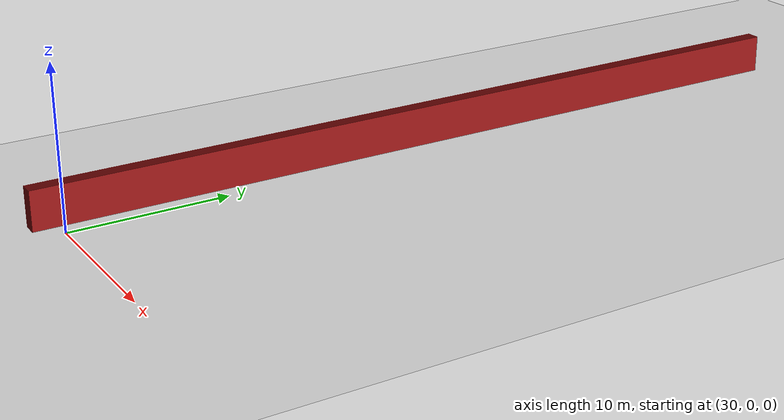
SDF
<sdf version="1.4">
 <world name="1_wall">
  <model name="ground_plane">
   <static>1</static>
   <link name="link">
    <collision name="collision">
     <geometry><plane><normal>0 0 1</normal><size>1000 1000</size></plane></geometry>
     <surface><friction><ode><mu>100</mu><mu2>50</mu2></ode></friction></surface>
    </collision>
    <visual name="visual">
     <cast_shadows>0</cast_shadows>
     <geometry><plane><normal>0 0 1</normal><size>10000 10000</size></plane></geometry>
     <material>
      <script><uri>file://media/materials/scripts/gazebo.material</uri><name>Gazebo/Grey</name></script>
     </material>
    </visual>
    <velocity_decay><linear>0</linear><angular>0</angular></velocity_decay>
   </link>
  </model>
  <model name="Wall_591">
   <static>1</static>
   <link name="Wall_591">
    <collision name="Wall_Collision_591">
     <geometry><box><size>53.65 0.05 2.5</size></box></geometry>
     <pose>0 0 1.25 0 -0 0</pose>
    </collision>
    <visual name="Wall_Visual_591">
     <pose>0 0 1.25 0 -0 0</pose>
     <geometry><box><size>53.65 0.05 2.5</size></box></geometry>
     <material>
      <script><uri>file://media/materials/scripts/gazebo.material</uri><name>Gazebo/Red</name></script>
     </material>
    </visual>
    <velocity_decay><linear>0</linear><angular>0</angular></velocity_decay>
    <pose>28.05 25.3 0 0 0 1.5707963267948966</pose>
   </link>
  </model>
  <model name="Wall_592">
   <static>1</static>
   <link name="Wall_592">
    <collision name="Wall_Collision_592">
     <geometry><box><size>53.65 0.05 2.5</size></box></geometry>
     <pose>0 0 1.25 0 -0 0</pose>
    </collision>
    <visual name="Wall_Visual_592">
     <pose>0 0 1.25 0 -0 0</pose>
     <geometry><box><size>53.65 0.05 2.5</size></box></geometry>
     <material>
      <script><uri>file://media/materials/scripts/gazebo.material</uri><name>Gazebo/Red</name></script>
     </material>
    </visual>
    <velocity_decay><linear>0</linear><angular>0</angular></velocity_decay>
    <pose>28.1 25.3 0 0 0 1.5707963267948966</pose>
   </link>
  </model>
  <model name="Wall_593">
   <static>1</static>
   <link name="Wall_593">
    <collision name="Wall_Collision_593">
     <geometry><box><size>53.65 0.05 2.5</size></box></geometry>
     <pose>0 0 1.25 0 -0 0</pose>
    </collision>
    <visual name="Wall_Visual_593">
     <pose>0 0 1.25 0 -0 0</pose>
     <geometry><box><size>53.65 0.05 2.5</size></box></geometry>
     <material>
      <script><uri>file://media/materials/scripts/gazebo.material</uri><name>Gazebo/Red</name></script>
     </material>
    </visual>
    <velocity_decay><linear>0</linear><angular>0</angular></velocity_decay>
    <pose>28.15 25.3 0 0 0 1.5707963267948966</pose>
   </link>
  </model>
  <model name="Wall_594">
   <static>1</static>
   <link name="Wall_594">
    <collision name="Wall_Collision_594">
     <geometry><box><size>53.65 0.05 2.5</size></box></geometry>
     <pose>0 0 1.25 0 -0 0</pose>
    </collision>
    <visual name="Wall_Visual_594">
     <pose>0 0 1.25 0 -0 0</pose>
     <geometry><box><size>53.65 0.05 2.5</size></box></geometry>
     <material>
      <script><uri>file://media/materials/scripts/gazebo.material</uri><name>Gazebo/Red</name></script>
     </material>
    </visual>
    <velocity_decay><linear>0</linear><angular>0</angular></velocity_decay>
    <pose>28.2 25.3 0 0 0 1.5707963267948966</pose>
   </link>
  </model>
  <model name="Wall_595">
   <static>1</static>
   <link name="Wall_595">
    <collision name="Wall_Collision_595">
     <geometry><box><size>53.65 0.05 2.5</size></box></geometry>
     <pose>0 0 1.25 0 -0 0</pose>
    </collision>
    <visual name="Wall_Visual_595">
     <pose>0 0 1.25 0 -0 0</pose>
     <geometry><box><size>53.65 0.05 2.5</size></box></geometry>
     <material>
      <script><uri>file://media/materials/scripts/gazebo.material</uri><name>Gazebo/Red</name></script>
     </material>
    </visual>
    <velocity_decay><linear>0</linear><angular>0</angular></velocity_decay>
    <pose>28.25 25.3 0 0 0 1.5707963267948966</pose>
   </link>
  </model>
  <model name="Wall_596">
   <static>1</static>
   <link name="Wall_596">
    <collision name="Wall_Collision_596">
     <geometry><box><size>53.65 0.05 2.5</size></box></geometry>
     <pose>0 0 1.25 0 -0 0</pose>
    </collision>
    <visual name="Wall_Visual_596">
     <pose>0 0 1.25 0 -0 0</pose>
     <geometry><box><size>53.65 0.05 2.5</size></box></geometry>
     <material>
      <script><uri>file://media/materials/scripts/gazebo.material</uri><name>Gazebo/Red</name></script>
     </material>
    </visual>
    <velocity_decay><linear>0</linear><angular>0</angular></velocity_decay>
    <pose>28.3 25.3 0 0 0 1.5707963267948966</pose>
   </link>
  </model>
  <model name="Wall_597">
   <static>1</static>
   <link name="Wall_597">
    <collision name="Wall_Collision_597">
     <geometry><box><size>53.65 0.05 2.5</size></box></geometry>
     <pose>0 0 1.25 0 -0 0</pose>
    </collision>
    <visual name="Wall_Visual_597">
     <pose>0 0 1.25 0 -0 0</pose>
     <geometry><box><size>53.65 0.05 2.5</size></box></geometry>
     <material>
      <script><uri>file://media/materials/scripts/gazebo.material</uri><name>Gazebo/Red</name></script>
     </material>
    </visual>
    <velocity_decay><linear>0</linear><angular>0</angular></velocity_decay>
    <pose>28.35 25.3 0 0 0 1.5707963267948966</pose>
   </link>
  </model>
  <model name="Wall_598">
   <static>1</static>
   <link name="Wall_598">
    <collision name="Wall_Collision_598">
     <geometry><box><size>53.65 0.05 2.5</size></box></geometry>
     <pose>0 0 1.25 0 -0 0</pose>
    </collision>
    <visual name="Wall_Visual_598">
     <pose>0 0 1.25 0 -0 0</pose>
     <geometry><box><size>53.65 0.05 2.5</size></box></geometry>
     <material>
      <script><uri>file://media/materials/scripts/gazebo.material</uri><name>Gazebo/Red</name></script>
     </material>
    </visual>
    <velocity_decay><linear>0</linear><angular>0</angular></velocity_decay>
    <pose>28.4 25.3 0 0 0 1.5707963267948966</pose>
   </link>
  </model>
  <model name="Wall_599">
   <static>1</static>
   <link name="Wall_599">
    <collision name="Wall_Collision_599">
     <geometry><box><size>53.65 0.05 2.5</size></box></geometry>
     <pose>0 0 1.25 0 -0 0</pose>
    </collision>
    <visual name="Wall_Visual_599">
     <pose>0 0 1.25 0 -0 0</pose>
     <geometry><box><size>53.65 0.05 2.5</size></box></geometry>
     <material>
      <script><uri>file://media/materials/scripts/gazebo.material</uri><name>Gazebo/Red</name></script>
     </material>
    </visual>
    <velocity_decay><linear>0</linear><angular>0</angular></velocity_decay>
    <pose>28.45 25.3 0 0 0 1.5707963267948966</pose>
   </link>
  </model>
  <model name="Wall_600">
   <static>1</static>
   <link name="Wall_600">
    <collision name="Wall_Collision_600">
     <geometry><box><size>53.65 0.05 2.5</size></box></geometry>
     <pose>0 0 1.25 0 -0 0</pose>
    </collision>
    <visual name="Wall_Visual_600">
     <pose>0 0 1.25 0 -0 0</pose>
     <geometry><box><size>53.65 0.05 2.5</size></box></geometry>
     <material>
      <script><uri>file://media/materials/scripts/gazebo.material</uri><name>Gazebo/Red</name></script>
     </material>
    </visual>
    <velocity_decay><linear>0</linear><angular>0</angular></velocity_decay>
    <pose>28.5 25.3 0 0 0 1.5707963267948966</pose>
   </link>
  </model>
  <model name="Wall_601">
   <static>1</static>
   <link name="Wall_601">
    <collision name="Wall_Collision_601">
     <geometry><box><size>53.65 0.05 2.5</size></box></geometry>
     <pose>0 0 1.25 0 -0 0</pose>
    </collision>
    <visual name="Wall_Visual_601">
     <pose>0 0 1.25 0 -0 0</pose>
     <geometry><box><size>53.65 0.05 2.5</size></box></geometry>
     <material>
      <script><uri>file://media/materials/scripts/gazebo.material</uri><name>Gazebo/Red</name></script>
     </material>
    </visual>
    <velocity_decay><linear>0</linear><angular>0</angular></velocity_decay>
    <pose>28.55 25.3 0 0 0 1.5707963267948966</pose>
   </link>
  </model>
  <model name="Wall_602">
   <static>1</static>
   <link name="Wall_602">
    <collision name="Wall_Collision_602">
     <geometry><box><size>53.65 0.05 2.5</size></box></geometry>
     <pose>0 0 1.25 0 -0 0</pose>
    </collision>
    <visual name="Wall_Visual_602">
     <pose>0 0 1.25 0 -0 0</pose>
     <geometry><box><size>53.65 0.05 2.5</size></box></geometry>
     <material>
      <script><uri>file://media/materials/scripts/gazebo.material</uri><name>Gazebo/Red</name></script>
     </material>
    </visual>
    <velocity_decay><linear>0</linear><angular>0</angular></velocity_decay>
    <pose>28.6 25.3 0 0 0 1.5707963267948966</pose>
   </link>
  </model>
  <model name="Wall_603">
   <static>1</static>
   <link name="Wall_603">
    <collision name="Wall_Collision_603">
     <geometry><box><size>53.65 0.05 2.5</size></box></geometry>
     <pose>0 0 1.25 0 -0 0</pose>
    </collision>
    <visual name="Wall_Visual_603">
     <pose>0 0 1.25 0 -0 0</pose>
     <geometry><box><size>53.65 0.05 2.5</size></box></geometry>
     <material>
      <script><uri>file://media/materials/scripts/gazebo.material</uri><name>Gazebo/Red</name></script>
     </material>
    </visual>
    <velocity_decay><linear>0</linear><angular>0</angular></velocity_decay>
    <pose>28.65 25.3 0 0 0 1.5707963267948966</pose>
   </link>
  </model>
  <model name="Wall_604">
   <static>1</static>
   <link name="Wall_604">
    <collision name="Wall_Collision_604">
     <geometry><box><size>53.65 0.05 2.5</size></box></geometry>
     <pose>0 0 1.25 0 -0 0</pose>
    </collision>
    <visual name="Wall_Visual_604">
     <pose>0 0 1.25 0 -0 0</pose>
     <geometry><box><size>53.65 0.05 2.5</size></box></geometry>
     <material>
      <script><uri>file://media/materials/scripts/gazebo.material</uri><name>Gazebo/Red</name></script>
     </material>
    </visual>
    <velocity_decay><linear>0</linear><angular>0</angular></velocity_decay>
    <pose>28.7 25.3 0 0 0 1.5707963267948966</pose>
   </link>
  </model>
  <model name="Wall_605">
   <static>1</static>
   <link name="Wall_605">
    <collision name="Wall_Collision_605">
     <geometry><box><size>53.65 0.05 2.5</size></box></geometry>
     <pose>0 0 1.25 0 -0 0</pose>
    </collision>
    <visual name="Wall_Visual_605">
     <pose>0 0 1.25 0 -0 0</pose>
     <geometry><box><size>53.65 0.05 2.5</size></box></geometry>
     <material>
      <script><uri>file://media/materials/scripts/gazebo.material</uri><name>Gazebo/Red</name></script>
     </material>
    </visual>
    <velocity_decay><linear>0</linear><angular>0</angular></velocity_decay>
    <pose>28.75 25.3 0 0 0 1.5707963267948966</pose>
   </link>
  </model>
  <model name="Wall_606">
   <static>1</static>
   <link name="Wall_606">
    <collision name="Wall_Collision_606">
     <geometry><box><size>53.65 0.05 2.5</size></box></geometry>
     <pose>0 0 1.25 0 -0 0</pose>
    </collision>
    <visual name="Wall_Visual_606">
     <pose>0 0 1.25 0 -0 0</pose>
     <geometry><box><size>53.65 0.05 2.5</size></box></geometry>
     <material>
      <script><uri>file://media/materials/scripts/gazebo.material</uri><name>Gazebo/Red</name></script>
     </material>
    </visual>
    <velocity_decay><linear>0</linear><angular>0</angular></velocity_decay>
    <pose>28.8 25.3 0 0 0 1.5707963267948966</pose>
   </link>
  </model>
  <model name="Wall_607">
   <static>1</static>
   <link name="Wall_607">
    <collision name="Wall_Collision_607">
     <geometry><box><size>53.65 0.05 2.5</size></box></geometry>
     <pose>0 0 1.25 0 -0 0</pose>
    </collision>
    <visual name="Wall_Visual_607">
     <pose>0 0 1.25 0 -0 0</pose>
     <geometry><box><size>53.65 0.05 2.5</size></box></geometry>
     <material>
      <script><uri>file://media/materials/scripts/gazebo.material</uri><name>Gazebo/Red</name></script>
     </material>
    </visual>
    <velocity_decay><linear>0</linear><angular>0</angular></velocity_decay>
    <pose>28.85 25.3 0 0 0 1.5707963267948966</pose>
   </link>
  </model>
  <model name="Wall_608">
   <static>1</static>
   <link name="Wall_608">
    <collision name="Wall_Collision_608">
     <geometry><box><size>53.65 0.05 2.5</size></box></geometry>
     <pose>0 0 1.25 0 -0 0</pose>
    </collision>
    <visual name="Wall_Visual_608">
     <pose>0 0 1.25 0 -0 0</pose>
     <geometry><box><size>53.65 0.05 2.5</size></box></geometry>
     <material>
      <script><uri>file://media/materials/scripts/gazebo.material</uri><name>Gazebo/Red</name></script>
     </material>
    </visual>
    <velocity_decay><linear>0</linear><angular>0</angular></velocity_decay>
    <pose>28.9 25.3 0 0 0 1.5707963267948966</pose>
   </link>
  </model>
 </world>
</sdf>
